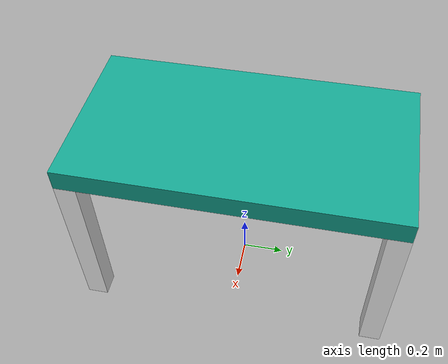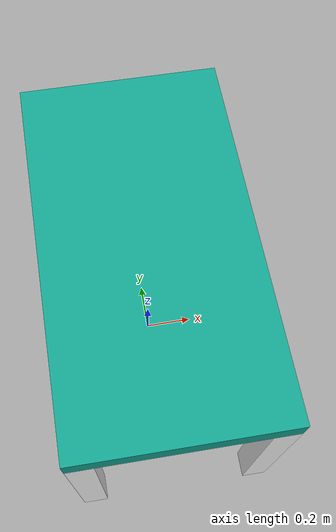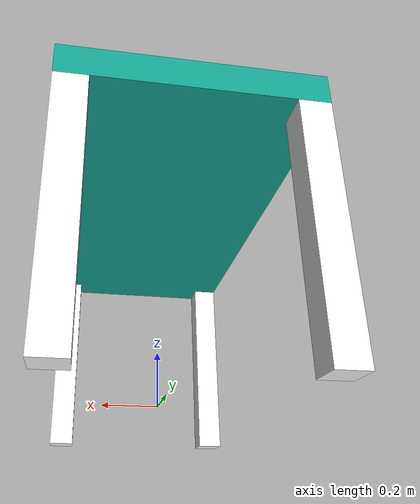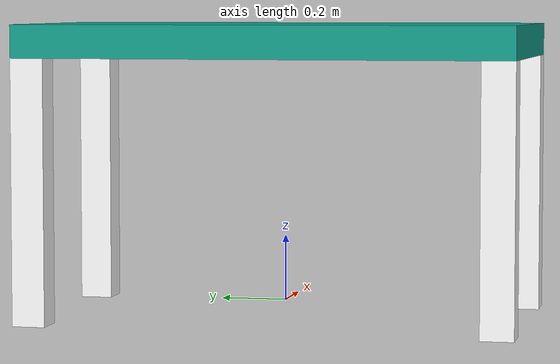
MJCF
<mujoco>

  <compiler angle="radian" coordinate="local" meshdir="."/>

  <asset>
    <material name="green" rgba="0.0745 0.6353 0.5568 1"/>  <!-- 绿色桌面 -->
    <material name="white" rgba="1 1 1 1"/>
  </asset>

  <worldbody>
    <!-- 桌面（父body） -->
    <body name="table" pos="0 0 0.8">
      <geom name="table_top" type="box" size="0.4 0.75 0.05" material="green"/>
      <!-- 桌腿（子body，直接从属桌面，无关节） -->
      <!-- 位置相对于父body（桌面）的局部坐标系 -->
      <body name="leg1" pos="-0.35 0.7 -0.45">  <!-- z轴向下0.45m（从桌面到地面） -->
        <geom name="leg1_geom" type="box" size="0.05 0.05 0.4" material="white"/>
      </body>

      <body name="leg2" pos="0.35 0.7 -0.45">
        <geom name="leg2_geom" type="box" size="0.05 0.05 0.4" material="white"/>
      </body>

      <body name="leg3" pos="-0.35 -0.7 -0.45">
        <geom name="leg3_geom" type="box" size="0.05 0.05 0.4" material="white"/>
      </body>

      <body name="leg4" pos="0.35 -0.7 -0.45">
        <geom name="leg4_geom" type="box" size="0.05 0.05 0.4" material="white"/>
      </body>
    </body>
  </worldbody>

  <visual>
    <headlight diffuse="0.8 0.8 0.8" specular="0.5 0.5 0.5"/>
    <map fogstart="10" fogend="100"/>
  </visual>

</mujoco>
